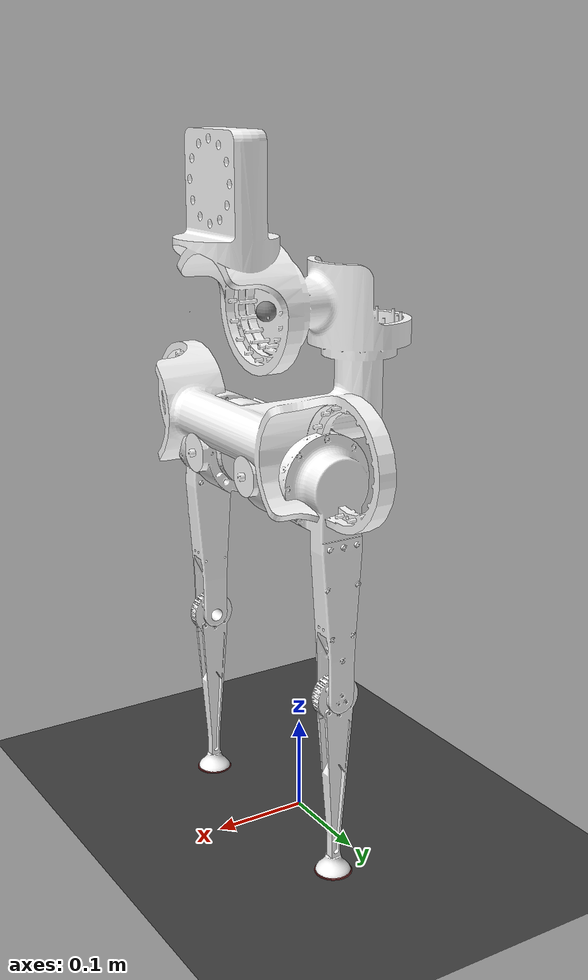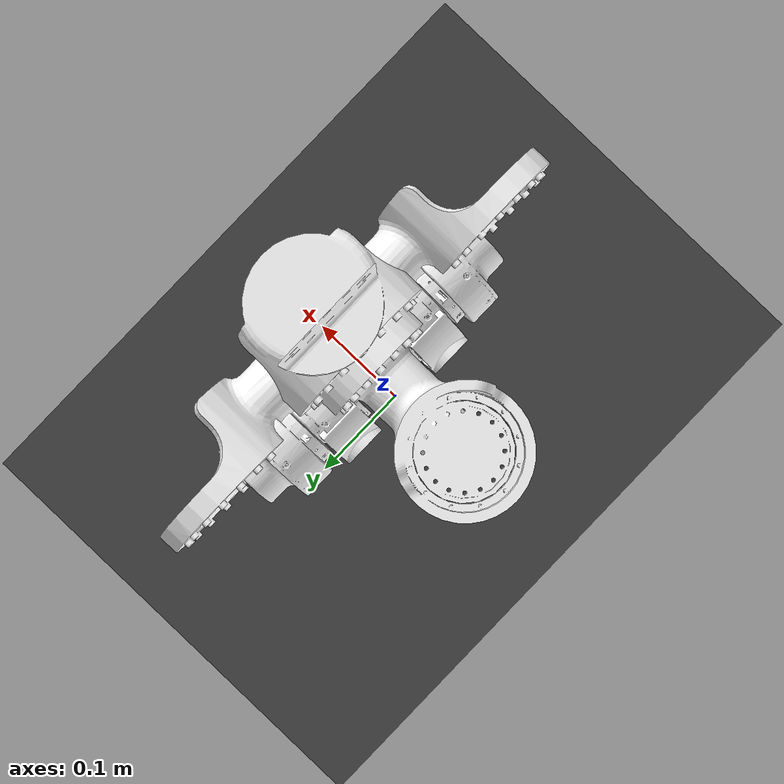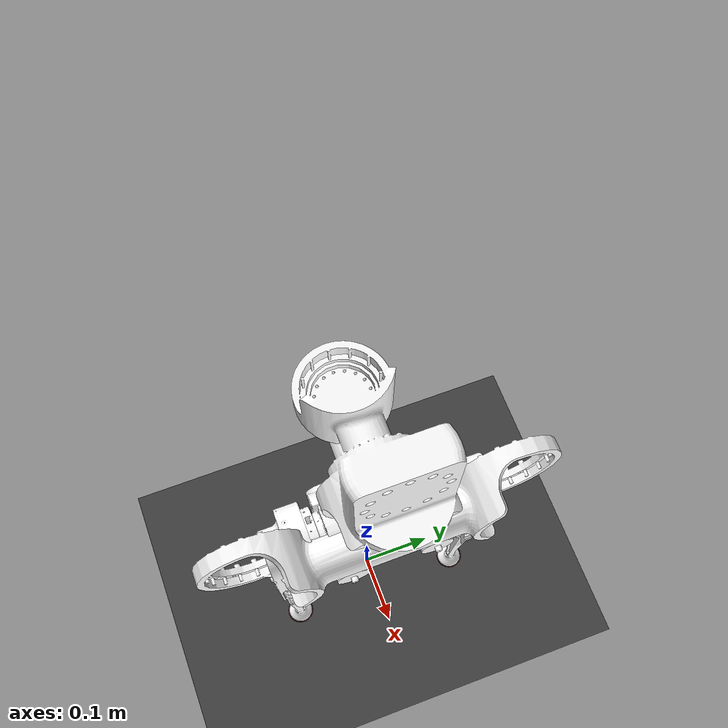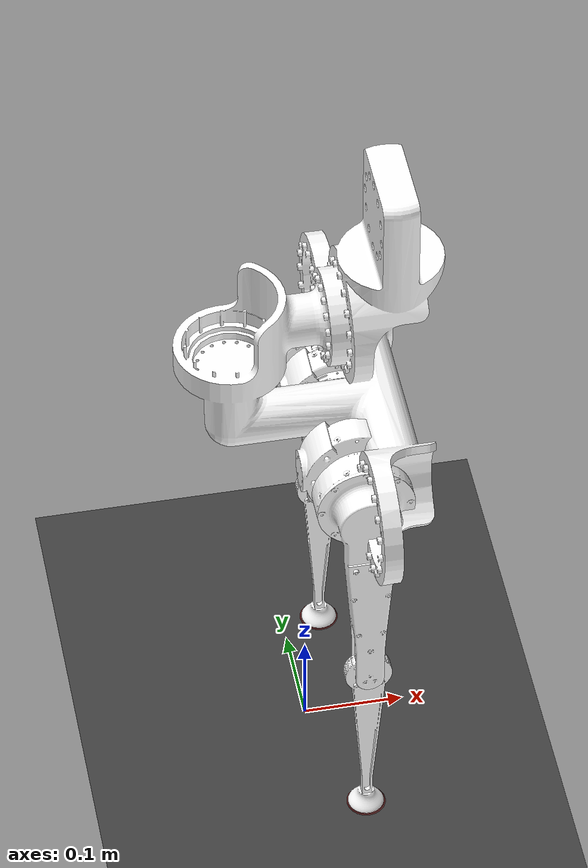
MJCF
<mujoco model="RobBIE_Sim_3D">
  <compiler angle="radian" autolimits="true"/>
  <default>
    <geom contype="0" conaffinity="0" condim="1" solref="0.005 1"/>
  </default>
  <option timestep='0.001' iterations="50" solver='PGS' gravity='0 0 -9.81' noslip_iterations="20"/>
  <visual>
    <quality shadowsize='4096'/>
    <global realtime="1" />
  </visual>

  <asset>
    <texture type="skybox" builtin="gradient" rgb1="0.4 0.6 0.8" width="128" height="128"/>
    <texture name="plane" type="2d" builtin="checker" rgb1="0.2 0.2 0.2" rgb2="0.3 0.3 0.3" width="500" height="500" />
    <material name="plane" reflectance="0.0" texture="plane" texrepeat="1 1" texuniform="true"/>

    <mesh name="base_link" file="base_link.STL"/>
    <mesh name="left_abad_link" file="left_abad_link.STL"/>
    <mesh name="left_leg_link" file="left_leg_link.STL"/>
    <mesh name="left_calf_link" file="left_calf_link.STL"/>
    <mesh name="right_abad_link" file="right_abad_link.STL"/>
    <mesh name="right_leg_link" file="right_leg_link.STL"/>
    <mesh name="right_calf_link" file="right_calf_link.STL"/>
  </asset>

  <worldbody>
    <light directional="false" cutoff="60" exponent="1" diffuse=".5 .5 .5" specular=".1 .1 .1" pos="0.5 0.1 0.8" dir="-0.5 -0.1 -0.8"/>
    <geom name="floor" pos="0  0  0" size="20 20 20" type="plane" material="plane" condim="3" conaffinity="15" friction=".7 .001 .001" contype="6"/>
    <body name="robbie" pos="0 0 0.45">
      <inertial pos="0. 0. 0." mass="2.21128889497571"  fullinertia="0.01538974171 0.01515015693 0.010629557622 0.0000014128 -0.00399385977 0.00000015788"/>
      <joint type="slide" axis="1 0 0" limited="false" range="-0.01 0.01"/>
      <joint type="slide" axis="0 1 0" limited="false" range="-0.01 0.01"/>
      <joint type="slide" axis="0 0 1" limited="false" range="-0.01 0.01"/>
      <joint name="thetaX" type="hinge" axis="1 0 0" limited="false" range="-0.01 0.01"/>
      <joint name="thetaY" type="hinge" axis="0 1 0" limited="false" range="-0.01 0.01"/>
      <joint name="thetaZ" type="hinge" axis="0 0 1" limited="true" range="-0.01 0.01"/>
      <geom type="mesh" rgba="1 1 1 1" mesh="base_link" contype="2" conaffinity="2" />
      <site name="imu_base" size="0.01" pos="0.0383611 0 0.1"/>
      <site name="imu_vel" size="0.01" pos="0.0383611 0.05 -0.0448642"/>
      <body name="left_abad_link" pos="0.0383611 0.05 -0.0448642" gravcomp="0">
        <inertial pos="0.00154082 0.000298409 -3.12981e-05" mass="0.692925" fullinertia="0.00034073449  0.00067046488 0.00051564627 0.00000177021 -0.0000004449 -0.0000003814"/>
        <joint name="left_abad_joint" pos="0 0 0" axis="1 0 0"/>
        <geom type="mesh" rgba="1 1 1 1" mesh="left_abad_link" contype="1" conaffinity="1" />
        <body name="left_leg_link" pos="0 0.07575 0" gravcomp="0">
          <inertial pos="2.88492e-05 -0.0188177 -0.025742" mass="0.863673" fullinertia="0.00219149847 0.00219443261 0.00049580602 0.00000058501 0.00000013792 0.00030899739"/>
          <joint name="left_hip_joint" pos="0 0 0" axis="0 1 0"/>
          <geom type="mesh" rgba="1 1 1 1" mesh="left_leg_link" contype="1" conaffinity="1"/>
          <body name="left_calf_link" pos="0 0 -0.2115" gravcomp="0">
            <inertial pos="5.44392e-05 -5.44606e-05 -0.129563" mass="0.132494" fullinertia="0.00104498863 0.00105069055 0.0000164077 0.00000000027 0.00000044869 -0.00000044869"/>
            <joint name="left_knee_joint" pos="0 0 0" axis="0 1 0"/>
            <geom type="mesh" rgba="1 1 1 1" mesh="left_calf_link" contype="6" conaffinity="1" />
            <site name="imu_left_foot" size="0.025" pos="0 0. -0.21" rgba="0.5 0 0 0.5"/>
          </body>
        </body>
      </body>
      <body name="right_abad_link" pos="0.0383611 -0.05 -0.0448642" gravcomp="0">
        <inertial pos="0.00154082 -0.000298409 3.12981e-05" mass="0.692925" fullinertia="0.00034073449 0.00067046488 0.00051564627 -0.00000177021 0.0000004449 -0.0000003814"/>
        <joint name="right_abad_joint" pos="0 0 0" axis="1 0 0"/>
        <geom type="mesh" rgba="1 1 1 1" mesh="right_abad_link" contype="1" conaffinity="1"/>
        <body name="right_leg_link" pos="0 -0.07575 0" gravcomp="0">
          <inertial pos="-2.88492e-05 0.0188177 -0.025742" mass="0.863673" fullinertia="0.00219149847 0.00219443261 0.00049580602 0.00000058501 -0.00000013792 -0.00030899739"/>
          <joint name="right_hip_joint" pos="0 0 0" axis="0 1 0"/>
          <geom type="mesh" rgba="1 1 1 1" mesh="right_leg_link" contype="1" conaffinity="1"/>
          <body name="right_calf_link" pos="0 0 -0.2115" gravcomp="0">
            <inertial pos="-5.44392e-05 5.44606e-05 -0.129563" mass="0.132494" fullinertia="0.00104498863 0.00105069055 0.0000164077 0.00000000027 -0.00000044869 0.00000044869"/>
            <joint name="right_knee_joint" pos="0 0 0" axis="0 1 0"/>
            <geom type="mesh" rgba="1 1 1 1" mesh="right_calf_link" contype="6" conaffinity="1"/>
            <site name="imu_right_foot" size="0.025" pos="0 0. -0.21" rgba="0.5 0 0 0.5"/>
          </body>
        </body>
      </body>
    </body>
  </worldbody>

  <actuator>
    <motor name="left_ABAD_motor"  joint="left_abad_joint" ctrllimited="false" ctrlrange="-30 30"/>
    <motor name="left_hip_motor"  joint="left_hip_joint" ctrllimited="false" ctrlrange="-30 30"/>
    <motor name="left_knee_motor"  joint="left_knee_joint" ctrllimited="false" ctrlrange="-30 30"/>
    <motor name="right_ABAD_motor"  joint="right_abad_joint" ctrllimited="false" ctrlrange="-30 30"/>
    <motor name="right_hip_motor"  joint="right_hip_joint" ctrllimited="false" ctrlrange="-30 30"/>
    <motor name="right_knee_motor"  joint="right_knee_joint" ctrllimited="false" ctrlrange="-30 30"/>
  </actuator>
  <sensor>
    <framequat       name="base_imu_quat"     objtype="site"  objname="imu_base"/>
    <gyro    site="imu_base"/>

    <actuatorpos name="left_ABAD_pos"    actuator="left_ABAD_motor"/>
    <actuatorpos name="left_hip_pos"   actuator="left_hip_motor"/>
    <actuatorpos name="left_knee_pos"    actuator="left_knee_motor"/>
    <actuatorpos name="right_ABAD_pos"    actuator="right_ABAD_motor"/>
    <actuatorpos name="right_hip_pos"   actuator="right_hip_motor"/>
    <actuatorpos name="right_knee_pos"    actuator="right_knee_motor"/>

    <actuatorvel name="left_ABAD_vel"    actuator="left_ABAD_motor"/>
    <actuatorvel name="left_hip_vel"   actuator="left_hip_motor"/>
    <actuatorvel name="left_knee_vel"    actuator="left_knee_motor"/>
    <actuatorvel name="right_ABAD_vel"    actuator="right_ABAD_motor"/>
    <actuatorvel name="right_hip_vel"   actuator="right_hip_motor"/>
    <actuatorvel name="right_knee_vel"    actuator="right_knee_motor"/>

    <actuatorfrc name="left_ABAD_frc"    actuator="left_ABAD_motor"/>
    <actuatorfrc name="left_hip_frc"   actuator="left_hip_motor"/>
    <actuatorfrc name="left_knee_frc"    actuator="left_knee_motor"/>
    <actuatorfrc name="right_ABAD_frc"    actuator="right_ABAD_motor"/>
    <actuatorfrc name="right_hip_frc"   actuator="right_hip_motor"/>
    <actuatorfrc name="right_knee_frc"    actuator="right_knee_motor"/>

    <framelinvel objtype="site" objname="imu_vel" />
  </sensor>
</mujoco>
